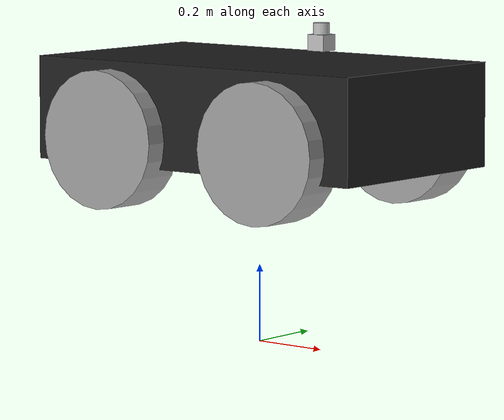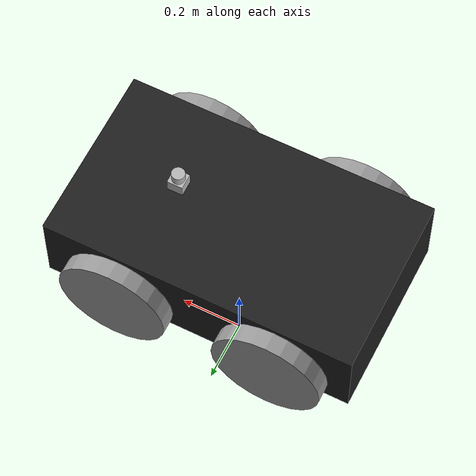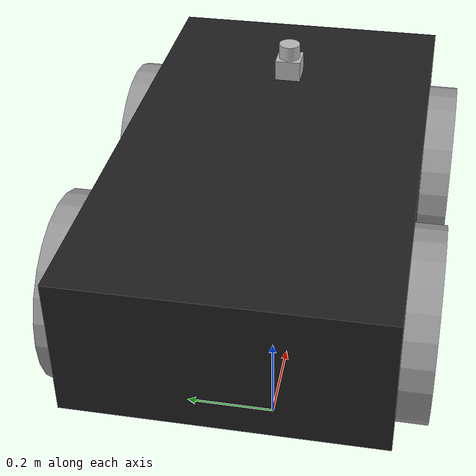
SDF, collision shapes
<?xml version='1.0'?>
<sdf version="1.3">
  <model name="huskysim">
    <pose>0 0 .5 0 0 0</pose>
    <!-- Main Chassis -->
    <link name="base_link">
      <!-- Physics -->
      <collision name='collision'>
        <pose>0 0 0.1 0 0 0</pose>
        <geometry>
          <box>
            <size>1.0074 0.5709 0.2675</size>
          </box>
        </geometry>
      </collision>

      <inertial>
        <mass>33.855</mass>
        <pose>-0.0856132 -0.000839955 0.238145  0 0 0</pose>
        <inertia>
          <ixx>2.2343</ixx>
          <ixy>-0.023642</ixy>
          <ixz>0.275174</ixz>
          <iyy>3.42518</iyy>
          <iyz>0.00239624</iyz>
          <izz>2.1241</izz>
        </inertia>
      </inertial>

      <!-- Visual -->
      <!-- Base frame -->
      <visual name='base'>
        <pose>0 0 0 0 0 0</pose>
        <geometry>
          <mesh><uri>model://husky/meshes/base_link.stl</uri></mesh>
        </geometry>
        <material>
          <script>
            <name>Gazebo/FlatBlack</name>
          </script>
        </material>
      </visual>

      <!-- Top Plate -->
      <visual name='top_plate'>
        <pose>0 0 0 0 0 0</pose>
        <geometry>
          <mesh><uri>model://husky/meshes/top_plate.stl</uri></mesh>
        </geometry>
        <material>
          <script>
            <name>Gazebo/Yellow</name>
          </script>
        </material>
      </visual>

      <!-- Front Bumper -->
      <visual name='front_bumper'>
        <pose>0.47 0 0.091 0 0 0</pose>
        <geometry>
          <mesh><uri>model://husky/meshes/bumper.stl</uri></mesh>
        </geometry>
        <material>
          <script>
            <name>Gazebo/FlatBlack</name>
          </script>
        </material>
      </visual>

      <!-- Rear Bumper -->
      <visual name='rear_bumper'>
        <pose>-0.47 0 0.091 0 0 3.141</pose>
        <geometry>
          <mesh><uri>model://husky/meshes/bumper.stl</uri></mesh>
        </geometry>
        <material>
          <script>
            <name>Gazebo/FlatBlack</name>
          </script>
        </material>
      </visual>

      <!-- User Rail -->
      <visual name='user_rail'>
        <pose>0.272 0 0.245 0 0 0</pose>
        <geometry>
          <mesh><uri>model://husky/meshes/user_rail.stl</uri></mesh>
        </geometry>
        <material>
          <script>
            <name>Gazebo/Grey</name>
          </script>
        </material>
      </visual>
    </link>

    <!-- Back Left Wheel -->
    <link name='back_left_wheel'>
      <pose>-0.256 0.285475 0.035 0 0 0</pose>
      <inertial>
        <mass>2.6357</mass>
        <pose>0 0 0 0 0 0</pose>
        <inertia>
          <ixx>0.0246688</ixx>
          <ixy>0</ixy>
          <ixz>0</ixz>
          <iyy>0.0246688</iyy>
          <iyz>0</iyz>
          <izz>0.0441058</izz>
        </inertia>
      </inertial>
      <collision name='back_left_wheel_collision'>
        <pose>0 0 0 -1.5707 0 0</pose>
        <geometry>
          <cylinder>
            <radius>0.17775</radius>
            <length>0.1143</length>
          </cylinder>
        </geometry>
        <surface>
          <friction>
            <ode>
              <mu>100000.0</mu>
              <mu2>100000.0</mu2>
              <slip1>0.0</slip1>
              <slip2>0.0</slip2>
            </ode>
          </friction>
        </surface>
      </collision>
      <visual name='back_left_wheel'>
        <pose>0 0 0 -3.14159 0 0</pose>
        <geometry>
          <mesh><uri>model://husky/meshes/wheel.stl</uri></mesh>
        </geometry>
        <material>
          <script>
            <name>Gazebo/Grey</name>
          </script>
        </material>
      </visual>
    </link>
    <joint name='back_left_joint' type='revolute'>
      <parent>base_link</parent>
      <child>back_left_wheel</child>
      <axis>
        <xyz>0 1 0</xyz>
      </axis>
      <physics><ode><limit>
            <cfm>0.000000</cfm>
            <erp>0.900000</erp>
      </limit></ode></physics>
    </joint>

    <!-- Back Right Wheel -->
    <link name='back_right_wheel'>
      <pose>-0.256 -0.285475 0.035 0 0 0</pose>
      <inertial>
        <mass>2.6357</mass>
        <pose>0 0 0 0 0 0</pose>
        <inertia>
          <ixx>0.0246688</ixx>
          <ixy>0</ixy>
          <ixz>0</ixz>
          <iyy>0.0246688</iyy>
          <iyz>0</iyz>
          <izz>0.0441058</izz>
        </inertia>
      </inertial>
      <collision name='back_right_wheel_collision'>
        <pose>0 0 0 -1.5707 0 0</pose>
        <geometry>
          <cylinder>
            <radius>0.17775</radius>
            <length>0.1143</length>
          </cylinder>
        </geometry>
        <surface>
          <friction>
            <ode>
              <mu>100000.0</mu>
              <mu2>100000.0</mu2>
              <slip1>0.0</slip1>
              <slip2>0.0</slip2>
            </ode>
          </friction>
        </surface>
      </collision>
      <visual name='back_right_wheel'>
        <pose>0 0 0 -3.14159 0 0</pose>
        <geometry>
          <mesh><uri>model://husky/meshes/wheel.stl</uri></mesh>
        </geometry>
        <material>
          <script>
            <name>Gazebo/Grey</name>
          </script>
        </material>
      </visual>
    </link>

    <joint name='back_right_joint' type='revolute'>
      <parent>base_link</parent>
      <child>back_right_wheel</child>
      <axis>
        <xyz>0 1 0</xyz>
      </axis>
      <physics><ode><limit>
            <cfm>0.000000</cfm>
            <erp>0.900000</erp>
      </limit></ode></physics>
    </joint>

    <!-- Front Left Wheel -->
    <link name='front_left_wheel'>
      <pose>0.256 0.285475 0.035 0 0 0</pose>
      <inertial>
        <mass>2.6357</mass>
        <pose>0 0 0 0 0 0</pose>
        <inertia>
          <ixx>0.0246688</ixx>
          <ixy>0</ixy>
          <ixz>0</ixz>
          <iyy>0.0246688</iyy>
          <iyz>0</iyz>
          <izz>0.0441058</izz>
        </inertia>
      </inertial>
      <collision name='front_left_wheel_collision'>
        <pose>0 0 0 -1.5707 0 0</pose>
        <geometry>
          <cylinder>
            <radius>0.17775</radius>
            <length>0.1143</length>
          </cylinder>
        </geometry>
        <surface>
          <friction>
            <ode>
              <mu>100000.0</mu>
              <mu2>100000.0</mu2>
              <slip1>0.0</slip1>
              <slip2>0.0</slip2>
            </ode>
          </friction>
        </surface>
      </collision>
      <visual name='front_left_wheel'>
        <pose>0 0 0 -3.14159 0 0</pose>
        <geometry>
          <mesh><uri>model://husky/meshes/wheel.stl</uri></mesh>
        </geometry>
        <material>
          <script>
            <name>Gazebo/Grey</name>
          </script>
        </material>
      </visual>
    </link>
    <joint name='front_left_joint' type='revolute'>
      <parent>base_link</parent>
      <child>front_left_wheel</child>
      <axis>
        <xyz>0 1 0</xyz>
      </axis>
      <physics><ode><limit>
            <cfm>0.000000</cfm>
            <erp>0.900000</erp>
      </limit></ode></physics>
    </joint>

    <!-- Front Right Wheel -->
    <link name='front_right_wheel'>
      <pose>0.256 -0.285475 0.035 0 0 0</pose>
      <inertial>
        <mass>2.6357</mass>
        <pose>0 0 0 0 0 0</pose>
        <inertia>
          <ixx>0.0246688</ixx>
          <ixy>0</ixy>
          <ixz>0</ixz>
          <iyy>0.0246688</iyy>
          <iyz>0</iyz>
          <izz>0.0441058</izz>
        </inertia>
      </inertial>
      <collision name='front_right_wheel_collision'>
        <pose>0 0 0 -1.5707 0 0</pose>
        <geometry>
          <cylinder>
            <radius>0.17775</radius>
            <length>0.1143</length>
          </cylinder>
        </geometry>
        <surface>
          <friction>
            <ode>
              <mu>100000.0</mu>
              <mu2>100000.0</mu2>
              <slip1>0.0</slip1>
              <slip2>0.0</slip2>
            </ode>
          </friction>
        </surface>
      </collision>
      <visual name='front_right_wheel'>
        <pose>0 0 0 -3.14159 0 0</pose>
        <geometry>
          <mesh><uri>model://husky/meshes/wheel.stl</uri></mesh>
        </geometry>
        <material>
          <script>
            <name>Gazebo/Grey</name>
          </script>
        </material>
      </visual>
    </link>
    <joint name='front_right_joint' type='revolute'>
      <parent>base_link</parent>
      <child>front_right_wheel</child>
      <axis>
        <xyz>0 1 0</xyz>
      </axis>
      <physics><ode><limit>
            <cfm>0.000000</cfm>
            <erp>0.900000</erp>
      </limit></ode></physics>
    </joint>
    <plugin name="husky_diff_controller" filename="libhusky_gazebo_plugins.so">
      <alwaysOn>true</alwaysOn>
      <updateRate>100.0</updateRate>
      <backLeftJoint>back_left_joint</backLeftJoint>
      <backRightJoint>back_right_joint</backRightJoint>
      <frontLeftJoint>front_left_joint</frontLeftJoint>
      <frontRightJoint>front_right_joint</frontRightJoint>
      <wheelSeparation>0.5709</wheelSeparation>
      <wheelDiameter>0.3555</wheelDiameter>
      <torque>35</torque>
    </plugin>

    <include>
      <uri>model://hokuyosim</uri>
      <pose>0.2 0 0.3 0 0 0</pose>
    </include>
    <joint name="hokuyo_joint" type="revolute">
          <child>hokuyo::link</child>
          <parent>chassis</parent>
          <axis>
            <xyz>0 0 1</xyz>
            <limit>
              <upper>0</upper>
              <lower>0</lower>
            </limit>
          </axis>
        </joint>
  </model>
</sdf>

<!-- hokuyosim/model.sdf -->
<sdf version="1.5">
  <model name="hokuyosim">
    <pose>0 0 0.035 0 0 0</pose>
    <link name="link">
      <inertial>
        <mass>0.001</mass>
      </inertial>
      <visual name="visual">
        <geometry>
          <mesh>
            <uri>model://hokuyo/meshes/hokuyo.dae</uri>
          </mesh>
        </geometry>
      </visual>
      <collision name="collision-base">
        <pose>0 0 -0.0145 0 0 0</pose>
        <geometry>
          <box>
            <size>0.05 0.05 0.041</size>
          </box>
        </geometry>
      </collision>
      <collision name="collision-top">
        <pose>0 0 0.0205 0 0 0</pose>
        <geometry>
          <cylinder>
            <radius>0.021</radius>
            <length>0.029</length>
          </cylinder>
        </geometry>
      </collision>
      <sensor name="laser" type="ray">
        <pose>0.01 0 0.0175 0 -0 0</pose>
        <ray>
          <scan>
            <horizontal>
              <samples>640</samples>
              <resolution>1</resolution>
              <min_angle>-2.26889</min_angle>
              <max_angle>2.268899</max_angle>
            </horizontal>
          </scan>
          <range>
            <min>0.08</min>
            <max>10</max>
            <resolution>0.01</resolution>
          </range>
        </ray>
        <plugin name="laser" filename="libRayPlugin.so" />
        <always_on>1</always_on>
        <update_rate>30</update_rate>
        <visualize>true</visualize>
        <topicName>/huskysim/laserscans</topicName>
        <frameName>/huskysim/laser_frame</frameName>
      </sensor>
    </link>
  </model>
</sdf>
